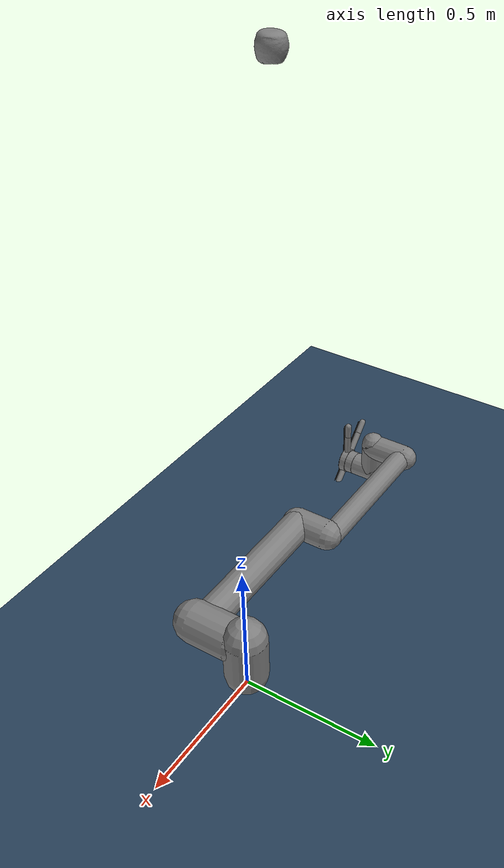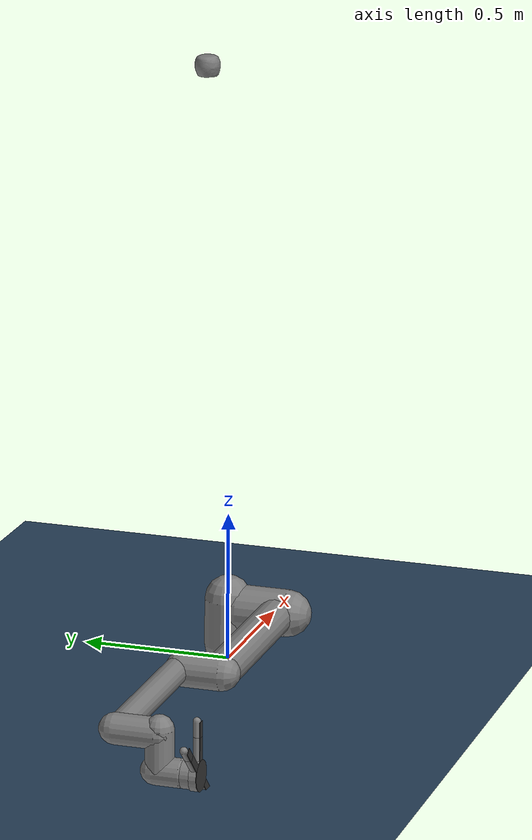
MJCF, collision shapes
<mujoco model="ur10e scene">
  <include file="hand_ur10e.xml"/>

  <statistic center="0.4 0 0.4" extent="1"/>

  <visual>
    <headlight diffuse="0.6 0.6 0.6" ambient="0.1 0.1 0.1" specular="0 0 0"/>
    <rgba haze="0.15 0.25 0.35 1"/>
    <global azimuth="120" elevation="-20"/>
  </visual>

  <asset>
    <texture type="skybox" builtin="gradient" rgb1="0.3 0.5 0.7" rgb2="0 0 0" width="512" height="3072"/>
    <texture type="2d" name="groundplane" builtin="checker" mark="edge" rgb1="0.2 0.3 0.4" rgb2="0.1 0.2 0.3"
      markrgb="0.8 0.8 0.8" width="300" height="300"/>
    <material name="groundplane" texture="groundplane" texuniform="true" texrepeat="5 5" reflectance="0.2"/>

  </asset>

  <worldbody>
    <light pos="0 0 1.5" dir="0 0 -1" directional="true"/>
    <geom name="floor" size="0 0 0.05" type="plane" material="groundplane"/>
  </worldbody>
</mujoco>

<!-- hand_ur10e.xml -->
<!-- BiRH Prototype 2 mounted on the UR10e Arm -->

<mujoco model="hand_ur10e">
  <compiler coordinate="local" angle="radian" meshdir="assets" autolimits="true"/>
  <option gravity="0 0 -9.81" integrator="RK4" timestep="0.0001">
    <flag contact="enable" energy="enable"/>
  </option>

  <default>
    <default class="ur10e">
      <material specular="0.5" shininess="0.25"/>
      <joint axis="0 1 0" range="-6.28319 6.28319" armature="0.1"/>
      <position ctrlrange="-6.2831 6.2831"/>
      <general biastype="affine" ctrlrange="-6.2831 6.2831" gainprm="5000" biasprm="0 -5000 -500"/>
      <default class="size4">
        <joint damping="10"/>
        <general forcerange="-330 330"/>
      </default>
      <default class="size3">
        <joint damping="5"/>
        <general forcerange="-150 150"/>
        <default class="size3_limited">
          <joint range="-3.1415 3.1415"/>
          <general ctrlrange="-3.1415 3.1415"/>
        </default>
      </default>
      <default class="size2">
        <joint damping="2"/>
        <general forcerange="-56 56"/>
      </default>
      <default class="visual">
        <geom type="mesh" contype="0" conaffinity="0" group="2"/>
      </default>
      <default class="collision">
        <geom type="capsule" group="3"/>
        <default class="eef_collision">
          <geom type="cylinder"/>
        </default>
      </default>
      <site size="0.001" rgba="0.5 0.5 0.5 0.3" group="4"/>
    </default>

    <!-- Hand-specific defaults -->
    <default class="hand">
      <joint damping="5"/>
      <geom friction="1.0 0.1 0.001"/>
    </default>
  </default>

  <asset>
    <material class="ur10e" name="black" rgba="0.033 0.033 0.033 1"/>
    <material class="ur10e" name="jointgray" rgba="0.278 0.278 0.278 1"/>
    <material class="ur10e" name="linkgray" rgba="0.82 0.82 0.82 1"/>
    <material class="ur10e" name="urblue" rgba="0.49 0.678 0.8 1"/>

    <!-- UR10e meshes -->
    <mesh file="base_0.obj"/>
    <mesh file="base_1.obj"/>
    <mesh file="shoulder_0.obj"/>
    <mesh file="shoulder_1.obj"/>
    <mesh file="shoulder_2.obj"/>
    <mesh file="upperarm_0.obj"/>
    <mesh file="upperarm_1.obj"/>
    <mesh file="upperarm_2.obj"/>
    <mesh file="upperarm_3.obj"/>
    <mesh file="forearm_0.obj"/>
    <mesh file="forearm_1.obj"/>
    <mesh file="forearm_2.obj"/>
    <mesh file="forearm_3.obj"/>
    <mesh file="wrist1_0.obj"/>
    <mesh file="wrist1_1.obj"/>
    <mesh file="wrist1_2.obj"/>
    <mesh file="wrist2_0.obj"/>
    <mesh file="wrist2_1.obj"/>
    <mesh file="wrist2_2.obj"/>
    <mesh file="wrist3.obj"/>

    <!-- Mesh of all the objects taken from http://ycb-benchmarks.s3-website-us-east-1.amazonaws.com/ -->
    <mesh name="apple_mesh" file="apple.stl" scale="1 1 1"/>

  </asset>

  <worldbody>
    <light name="spotlight" mode="targetbodycom" target="wrist_2_link" pos="0 -1 2"/>

    <body name="base" quat="0 0 0 -1" childclass="ur10e">
      <inertial mass="4.0" pos="0 0 0" diaginertia="0.0061063308908 0.0061063308908 0.01125"/>
      <geom mesh="base_0" material="black" class="visual"/>
      <geom mesh="base_1" material="jointgray" class="visual"/>
      <body name="shoulder_link" pos="0 0 0.181">
        <inertial pos="0 0 0" mass="7.778" diaginertia="0.0314743 0.0314743 0.0218756"/>
        <joint name="shoulder_pan_joint" class="size4" axis="0 0 1"/>
        <geom mesh="shoulder_0" material="urblue" class="visual"/>
        <geom mesh="shoulder_1" material="black" class="visual"/>
        <geom mesh="shoulder_2" material="jointgray" class="visual"/>
        <geom class="collision" size="0.078 0.08" pos="0 0 -0.05"/>
        <body name="upper_arm_link" pos="0 0.176 0" quat="1 0 1 0">
          <inertial pos="0 0 0.3065" mass="12.93" diaginertia="0.423074 0.423074 0.0363656"/>
          <joint name="shoulder_lift_joint" class="size4"/>
          <geom mesh="upperarm_0" material="black" class="visual"/>
          <geom mesh="upperarm_1" material="jointgray" class="visual"/>
          <geom mesh="upperarm_2" material="urblue" class="visual"/>
          <geom mesh="upperarm_3" material="linkgray" class="visual"/>
          <geom class="collision" pos="0 -0.05 0" quat="1 1 0 0" size="0.078 0.08"/>
          <geom class="collision" size="0.06 0.3" pos="0 0 0.3"/>
          <body name="forearm_link" pos="0 -0.137 0.613">
            <inertial pos="0 0 0.2855" mass="3.87" diaginertia="0.11059 0.11059 0.0108844"/>
            <joint name="elbow_joint" class="size3_limited"/>
            <geom mesh="forearm_0" material="urblue" class="visual"/>
            <geom mesh="forearm_1" material="black" class="visual"/>
            <geom mesh="forearm_2" material="jointgray" class="visual"/>
            <geom mesh="forearm_3" material="linkgray" class="visual"/>
            <geom class="collision" pos="0 0.08 0" quat="1 1 0 0" size="0.058 0.065"/>
            <geom class="collision" size="0.043 0.28" pos="0 0 0.29"/>
            <body name="wrist_1_link" pos="0 0 0.571" quat="1 0 1 0">
              <inertial pos="0 0.135 0" quat="0.5 0.5 -0.5 0.5" mass="1.96"
                diaginertia="0.0055125 0.00510825 0.00510825"/>
              <joint name="wrist_1_joint" class="size2"/>
              <geom mesh="wrist1_0" material="black" class="visual"/>
              <geom mesh="wrist1_1" material="urblue" class="visual"/>
              <geom mesh="wrist1_2" material="jointgray" class="visual"/>
              <geom class="collision" pos="0 0.06 0" quat="1 1 0 0" size="0.05 0.07"/>
              <body name="wrist_2_link" pos="0 0.135 0">
                <inertial pos="0 0 0.12" quat="0.5 0.5 -0.5 0.5" mass="1.96"
                  diaginertia="0.0055125 0.00510825 0.00510825"/>
                <joint name="wrist_2_joint" axis="0 0 1" class="size2"/>
                <geom mesh="wrist2_0" material="black" class="visual"/>
                <geom mesh="wrist2_1" material="urblue" class="visual"/>
                <geom mesh="wrist2_2" material="jointgray" class="visual"/>
                <geom class="collision" size="0.046 0.065" pos="0 0 0.05"/>
                <geom class="collision" pos="0 0.028 0.12" quat="1 1 0 0" size="0.046 0.043"/>
                <body name="wrist_3_link" pos="0 0 0.12">
                  <inertial pos="0 0.092 0" quat="0 1 -1 0" mass="0.202"
                    diaginertia="0.000204525 0.000144346 0.000144346"/>
                  <joint name="wrist_3_joint" class="size2"/>
                  <geom material="linkgray" mesh="wrist3" class="visual"/>
                  <geom class="eef_collision" pos="0 0.097 0" quat="1 1 0 0" size="0.046 0.02"/>
                  <site name="attachment_site" pos="0 0.1 0" quat="-1 1 0 0"/>
                  <!--  Hand  -->
                  <body name="hand" pos="0 0.12 0" quat="0.707 -0.707 0 0">
                    <geom name="palm" type="cylinder" pos="0 0 0" size="0.05 0.0125"/>
                    <geom name="palm_pad" type="cylinder" pos="0 0 0.013" size="0.05 0.001"
                          margin="0.003" solref="0.0005 1.6" solimp="0.99 0.999 0.0003 0.5 2"
                          friction="1.2 0.01 0.0005" rgba="0.2 0.2 0.2 0.8" mass="0.005"/>

                    <!--  Finger 1  -->
                    <body name="finger1_pp" pos="0 .05 0">
                      <joint name="mpj1" type="hinge" axis="1 0 0" damping="5" range="0 1.571"/>
                      <geom name="pp1" type="capsule" fromto="0 0 0 0 .075 0" size="0.0125" mass=".1"/>
                      <geom name="pp1_pad" type="box" pos="0 0.0375 0.013" size="0.0125 0.0375 0.001"
                            margin="0.003" solref="0.0005 1.6" solimp="0.99 0.999 0.0003 0.5 2"
                            friction="1.2 0.01 0.0005" rgba="0.2 0.2 0.2 0.8" mass="0.005"/>
                        <body name="finger1_mp" pos="0 .075 0">
                          <joint name="pipj1" type="hinge" axis="1 0 0" damping="5" range="0 1.571"/>
                          <geom name="mp1" type="capsule" fromto="0 0 0 0 .05 0" size="0.0125" mass=".1"/>
                            <geom name="mp1_pad" type="box" pos="0 0.025 0.013" size="0.0125 0.025 0.001"
                              margin="0.003" solref="0.0005 1.6" solimp="0.99 0.999 0.0003 0.5 2"
                              friction="1.2 0.01 0.0005" rgba="0.2 0.2 0.2 0.8" mass="0.005"/>
                        </body>
                    </body>

                    <!--  Finger 2  -->
                    <body name="finger2_pp" pos="-0.03535 0.03535 0">
                      <joint name="mpj2" type="hinge" axis="1 1 0" damping="5" range="0 1.571"/>
                      <geom name="pp2" type="capsule" fromto="0 0 0 -.053 .053 0" size="0.0125" mass=".1"/>
                      <geom name="pp2_pad" type="box" pos="-0.025 0.025 0.013" size="0.0125 0.0375 0.001"
                            margin="0.003" solref="0.0005 1.6" solimp="0.99 0.999 0.0003 0.5 2"
                            friction="1.2 0.01 0.0005" rgba="0.2 0.2 0.2 0.8" mass="0.005" quat="0.927 0 0 0.375"/>
                        <body name="finger2_mp" pos="-.053 .053 0">
                          <joint name="pipj2" type="hinge" axis="1 1 0" damping="5" range="0 1.571"/>
                          <geom name="mp2" type="capsule" fromto="0 0 0 -0.03535 0.03535 0" size="0.0125" mass=".1"/>
                            <geom name="mp2_pad" type="box" pos="-0.0155 0.0155 0.013" size="0.0125 0.025 0.001"
                              margin="0.003" solref="0.0005 1.6" solimp="0.99 0.999 0.0003 0.5 2"
                              friction="1.2 0.01 0.0005" rgba="0.2 0.2 0.2 0.8" mass="0.005" quat="0.927 0 0 0.375"/>
                        </body>
                    </body>

                    <!-- Thumb -->
                    <body name="fingert_pp" pos="0.03535 -0.03535 0">
                      <joint name="mpjt" type="hinge" axis="-1 -1 0" damping="5" range="0 1.571"/>
                      <joint name="abd_add" type="hinge" axis="0 0 1" damping="5" range="-0.5237 0.5237"/>
                      <geom name="ppt" type="capsule" fromto="0 0 0 .053 -.053 0" size="0.0125" mass=".1"/>
                      <geom name="ppt_pad" type="box" pos="0.025 -0.025 0.013" size="0.0125 0.0375 0.001"
                            margin="0.003" solref="0.0005 1.6" solimp="0.99 0.999 0.0003 0.5 2"
                            friction="1.2 0.01 0.0005" rgba="0.2 0.2 0.2 0.8" mass="0.005" quat="0.927 0 0 0.375"/>
                        <body name="fingert_mp" pos=".053 -.053 0">
                          <joint name="pipjt" type="hinge" axis="-1 -1 0" damping="5" range="0 1.571"/>
                          <geom name="mpt" type="capsule" fromto="0 0 0 0.03535 -0.03535 0" size="0.0125" mass=".1"/>
                          <geom name="mpt_pad" type="box" pos="0.0155 -0.0155 0.013" size="0.0125 0.025 0.001"
                              margin="0.003" solref="0.0005 1.6" solimp="0.99 0.999 0.0003 0.5 2"
                              friction="1.2 0.01 0.0005" rgba="0.2 0.2 0.2 0.8" mass="0.005" quat="0.927 0 0 0.375"/>
                        </body>
                    </body>

                  </body>
                </body>
              </body>
            </body>
          </body>
        </body>
      </body>
    </body>

    <!-- Objects for grasping -->
    <body name="apple" pos="-0.2 0 2">
      <freejoint/>
      <geom name="apple_g" type="mesh" mesh="apple_mesh" mass="0.2"
            solref=".002 1" solimp="0.9 0.95 0.001 0.5 2" friction="1.0 0.01 0.001"/>

    </body>

  </worldbody>

  <actuator>
    <!-- UR10e actuators -->
    <general class="size4" name="shoulder_pan" joint="shoulder_pan_joint"/>
    <general class="size4" name="shoulder_lift" joint="shoulder_lift_joint"/>
    <general class="size3_limited" name="elbow" joint="elbow_joint"/>
    <general class="size2" name="wrist_1" joint="wrist_1_joint"/>
    <general class="size2" name="wrist_2" joint="wrist_2_joint"/>
    <general class="size2" name="wrist_3" joint="wrist_3_joint"/>

    <!-- Hand actuators -->
    <position name="mpj1_motor" joint="mpj1" kp="200" ctrlrange="0 1.571"/>
    <position name="pipj1_motor" joint="pipj1" kp="100" ctrlrange="0 1.571"/>
    <position name="mpj2_motor" joint="mpj2" kp="200" ctrlrange="0 1.571"/>
    <position name="pipj2_motor" joint="pipj2" kp="100" ctrlrange="0 1.571"/>
    <position name="mpjt_motor" joint="mpjt" kp="200" ctrlrange="0 1.571"/>
    <position name="abd_add_motor" joint="abd_add" kp="100" ctrlrange="-1.2 1.2"/>
    <position name="pipjt_motor" joint="pipjt" kp="100" ctrlrange="0 1.571"/>
  </actuator>

  <keyframe>
    <key name="home" qpos="0 -1.63 0 0 1.57 0 0 0 0 0 0 0 0 -0.03 -0.18 1.5 0 0 0 0"
                     ctrl="0 -1.63 0 0 1.57 0 0 0 0 0 0 0 0"/>
  </keyframe>
</mujoco>
